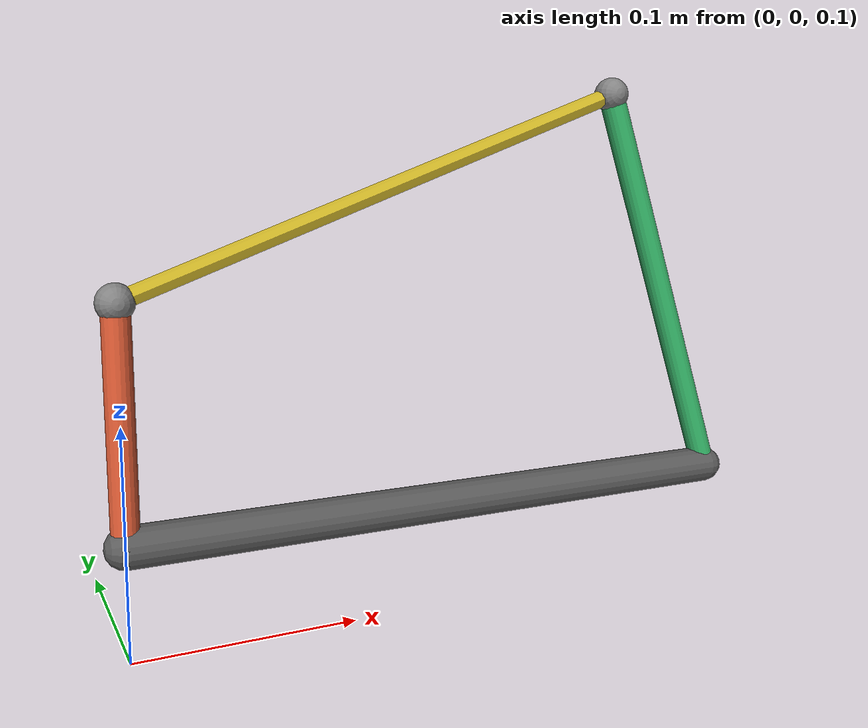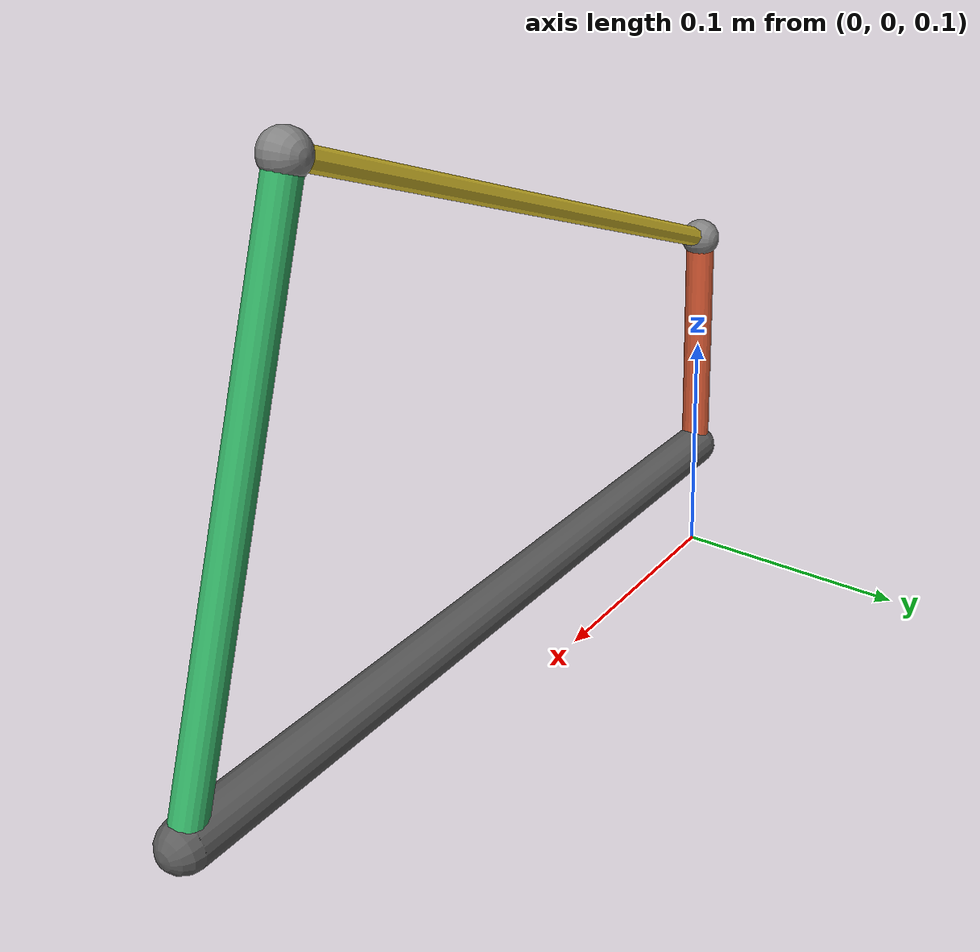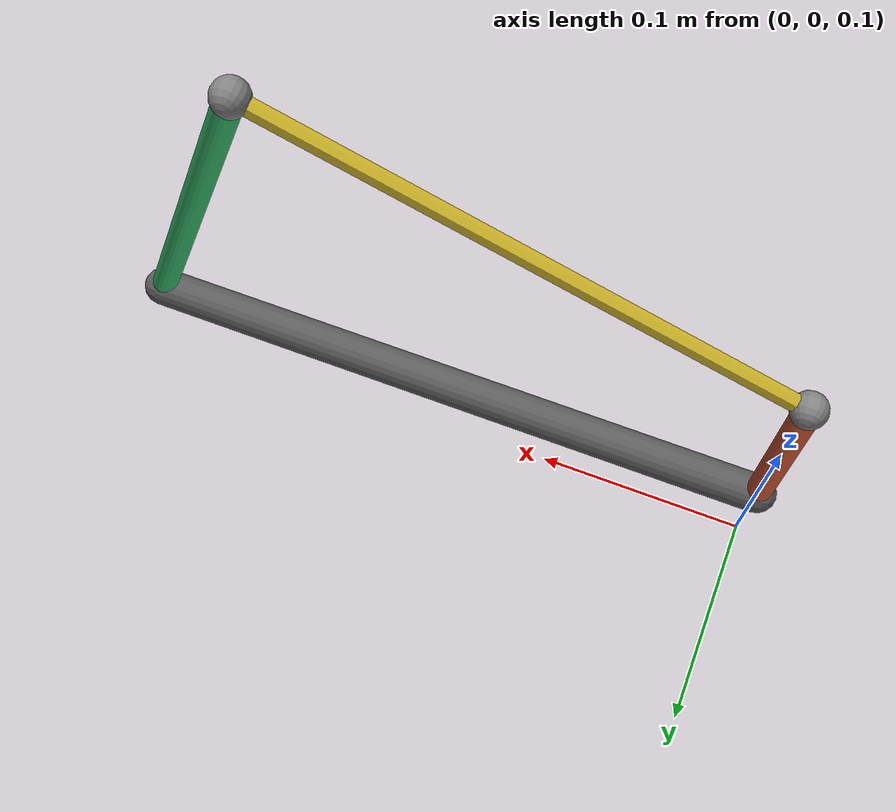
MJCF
<mujoco model="force_transfer_fourbar">
  <compiler angle="radian" />
  <option gravity="0 0 0" timestep=".0005" integrator="implicitfast" jacobian="dense" solver="Newton" iterations="100" tolerance="1e-12">
    <flag contact="disable" island="disable" energy="enable" diagexact="enable" />
  </option>
  <default>
    <joint limited="false" damping="0" armature="0" />
    <geom contype="0" conaffinity="0" />
    <site size=".008" />
  </default>
  <worldbody>
    <body name="frame" pos="0 0 .15" quat="0.70710678118654757 0.70710678118654746 0 0">
      <geom type="capsule" fromto="0 0 0 0.29999999999999999 0 0" size=".009" rgba=".35 .35 .35 1" />
      <body name="crank" pos="0 0 0" quat="0.70710678118654757 0 0 0.70710678118654746">
        <joint name="input" axis="0 0 1" pos="0 0 0" />
        <inertial pos="0.050000000000000003 0 0" mass="0.3" diaginertia="5.4e-06 0.00025270000000000007 0.00025270000000000007" />
        <geom type="capsule" fromto="0 0 0 0.10000000000000001 0 0" size="0.006" rgba=".85 .35 .2 1" />
        <site name="input_tip" pos="0.10000000000000001 0 0" />
      </body>
      <body name="rocker" pos="0.29999999999999999 0 0" quat="0.57821789266207979 0 0 0.81588238650275058">
        <joint name="output" axis="0 0 1" pos="0 0 0" />
        <inertial pos="0.10000000000000001 0 0" mass="0.4" diaginertia="7.2000000000000005e-06 0.0013369333333333336 0.0013369333333333336" />
        <geom type="capsule" fromto="0 0 0 0.20000000000000001 0 0" size="0.006" rgba=".2 .7 .4 1" />
        <site name="output_tip" pos="0.20000000000000001 0 0" />
      </body>
    </body>
    <light pos=".2 -1 1" dir="0 1 -1" />
  </worldbody>
  <equality>
    <tendon tendon1="rod" name="loop" solref="0.009488472193020818 1" solimp="0.9921930164592978 0.9921930164592978 .001" />
  </equality>
  <tendon>
    <spatial name="rod" width=".004" rgba=".8 .7 .15 1">
      <site site="input_tip" />
      <site site="output_tip" />
    </spatial>
  </tendon>
  <actuator>
    <position name="drive" joint="input" kp="500" kv="5" />
  </actuator>
  <custom>
    <numeric name="reference" data="1.5707963267948966 1.9085072020178422 0.36271348012230697 0 0.25" />
  </custom>
  <visual>
    <headlight ambient=".5 .5 .5" />
  </visual>
</mujoco>
